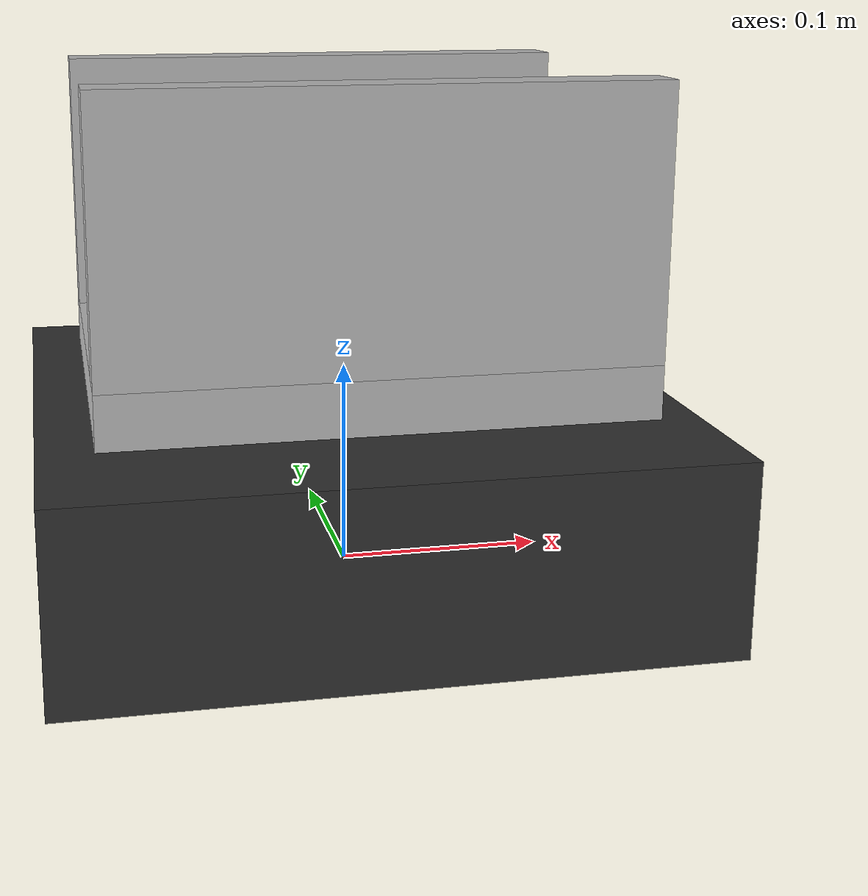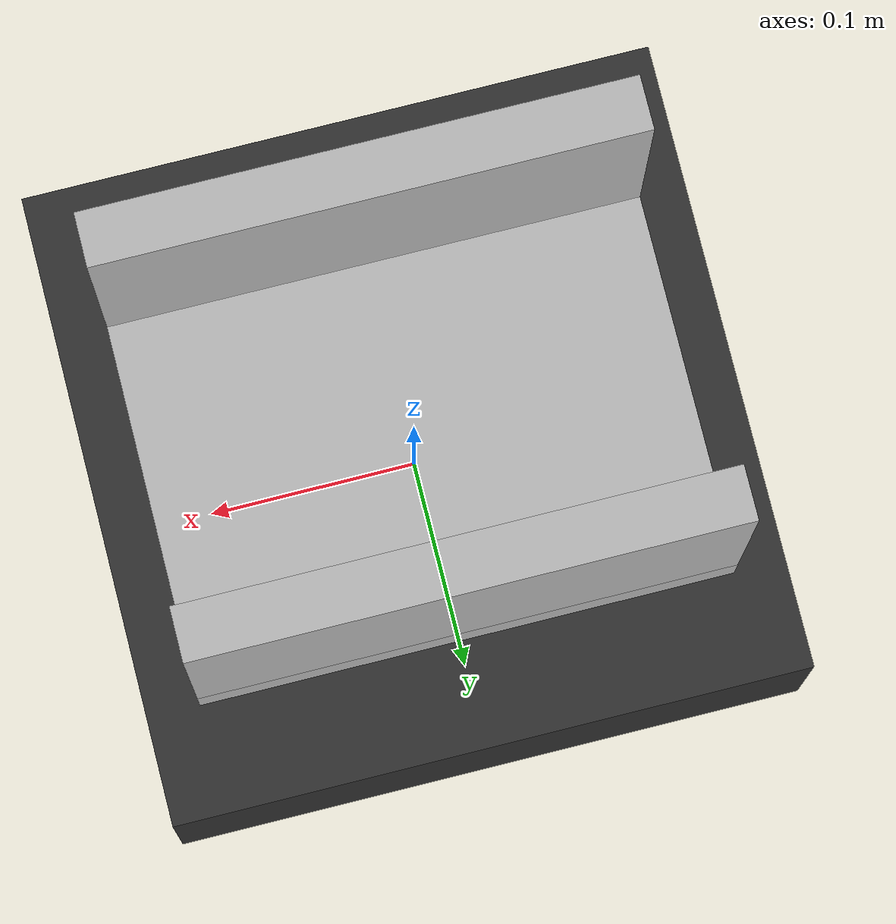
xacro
<?xml version = "1.0"?>
<robot name = "SingleArmManipulator" xmlns:xacro = "http://ros.org/wiki/xacro">
<!--
    You can confirm your manipulator on "rviz" to put down this cord.
    roslaunch urdf_tutorial display.launch model:=urdf/manipulator/manipulator.urdf.xacro
-->

    <xacro:include filename="$(find manipulator_simulation)/urdf/manipulator/manipulator_parts.xacro"/>
    <!-- xacro:include filename="$(find manipulator_simulation)/urdf/manipulator/camera.xacro"/-->
    <xacro:include filename="$(find manipulator_simulation)/urdf/manipulator/hand_parts.xacro"/>

    <!-- define colors -->
    <material name = "black">
        <color rgba = "0.2 0.2 0.2 1"/>
    </material>
    <material name = "grey">
        <color rgba = "0.75 0.75 0.75 1"/>
    </material>

    <!-- define empty link to fasten manipulator -->
    <link name = "world"/>

    <xacro:property name = "end_effector_base_link" value = "wrist_base_link"/>

    <xacro:manipulator  parent = "world"        end_effector_link = "${end_effector_base_link}"
                        link_colour_1 = "black" link_colour_2 = "grey">
        <!-- define position where we want to set manupulator in the original point of link "world" -->
        <origin xyz = "0 0 0" rpy = "0 0 0"/>
    </xacro:manipulator>

    <xacro:gripper  base_link_name = "${end_effector_base_link}"
                    base_colour = "black" finger_colour = "grey"/>

</robot>

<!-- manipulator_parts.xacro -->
<!--
    You can confirm your manipulator on "rviz" to put down this cord.
    roslaunch urdf_tutorial display.launch model:=urdf/manipulator/manipulator.urdf.xacro
-->
<robot name = "manipulator" xmlns:xacro = "http://ros.org/wiki/xacro">
    <!-- Manipulator macro -->
    <xacro:macro name = "manipulator"
        params = "parent end_effector_link link_colour_1 link_colour_2 *origin">

        <!-- base -->
        <xacro:property name = "PI"     value = "3.14159"/>
        <xacro:property name = "BASE_X" value = "0.30"/>
        <xacro:property name = "BASE_Y" value = "0.30"/>
        <xacro:property name = "BASE_Z" value = "0.09"/>
        <link name = "base_link">
            <visual>
                <geometry>
                    <box size = "${BASE_X} ${BASE_Y} ${BASE_Z}"/>
                </geometry>
                <origin xyz = "0 0 ${BASE_Z/2}" rpy = "0 0 0"/>
                <material name = "${link_colour_1}"/>
            </visual>
            <collision>
                <geometry>
                    <box size = "${BASE_X} ${BASE_Y} ${BASE_Z}"/>
                </geometry>
                <origin xyz = "0 0 ${BASE_Z/2}" rpy = "0 0 0"/>
            </collision>
            <inertial>
                <mass value = "0.1"/>
                <inertia ixx = "1e-3" ixy = "0" ixz = "0" iyy = "1e-3" iyz = "0" izz = "1e-3"/>
            </inertial>
        </link>
        <joint name = "base_joint" type = "fixed">
            <!-- we defined "parent" as paramater of macro  -->
            <parent link = "${parent}"/>
            <child link = "base_link"/>
            <xacro:insert_block name = "origin"/>
        </joint>

        <!-- shoulder -->
        <xacro:property name = "SHOULDER_X" value = "0.25"/>
        <xacro:property name = "SHOULDER_Y" value = "0.20"/>
        <xacro:property name = "SHOULDER_Z" value = "0.15"/>
        <link name = "shoulder_link">
            <visual>
                <geometry>
                    <box size = "${SHOULDER_X} ${SHOULDER_Y} 0.025"/>
                </geometry>
                <origin xyz = "0 0 0.0175" rpy = "0 0 0"/>
                <material name = "${link_colour_2}"/>
            </visual>
            <visual>
                <geometry>
                    <box size = "${SHOULDER_X} 0.025 ${SHOULDER_Z - 0.025}"/>
                </geometry>
                <origin xyz = "0 ${SHOULDER_Y/2 - 0.0125} ${0.025 + 0.005 + (SHOULDER_Z - 0.025)/2}" rpy = "0 0 0"/>
                <material name = "${link_colour_2}"/>
            </visual>
            <visual>
                <geometry>
                    <box size = "${SHOULDER_X} 0.025 ${SHOULDER_Z - 0.025}"/>
                </geometry>
                <origin xyz = "0 ${-(SHOULDER_Y/2) + 0.0125} ${0.025  + 0.005 + (SHOULDER_Z - 0.025)/2}" rpy = "0 0 0"/>
                <material name = "${link_colour_2}"/>
            </visual>
            <!-- adopt simple box -->
            <collision>
                <geometry>
                    <box size = "${SHOULDER_X} ${SHOULDER_Y} ${SHOULDER_Z}"/>
                </geometry>
                <origin xyz = "0 0 ${SHOULDER_Z/2}" rpy =  "0 0 0"/>
            </collision>
            <inertial>
                <mass value = "0.025"/>
                <inertia ixx = "1e-3" ixy = "0" ixz = "0" iyy = "1e-3" iyz = "0" izz = "1e-3"/>
            </inertial>
        </link>
        <!-- type "revolute" has diffference that the rotation argument is restricted -->
        <joint name = "shoulder_rotate_joint" type = "revolute">
            <axis xyz = "0 0 1"/>
            <parent link = "base_link"/>
            <child link = "shoulder_link"/>
            <!-- "link" part's position base is "origin xyz" -->
            <origin xyz = "0 0 ${BASE_Z}" rpy = "0 0 0"/>
            <limit lower = "-${PI}" upper = "${PI}" effort = "30" velocity = "${PI}"/>
        </joint>
    </xacro:macro>

</robot>
